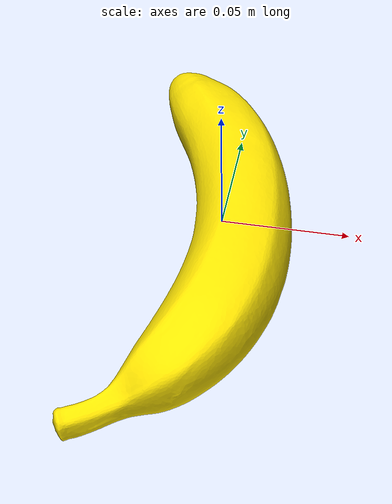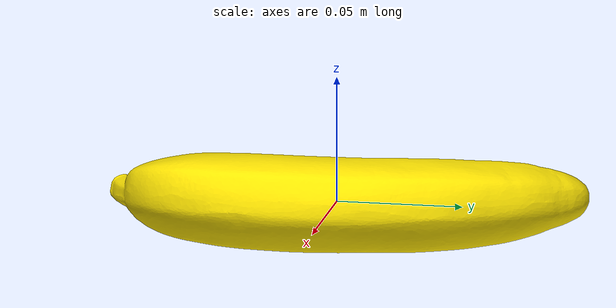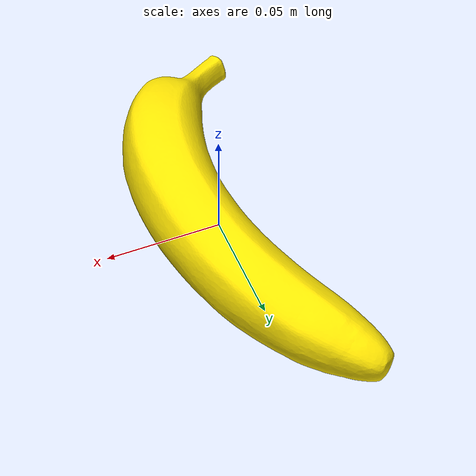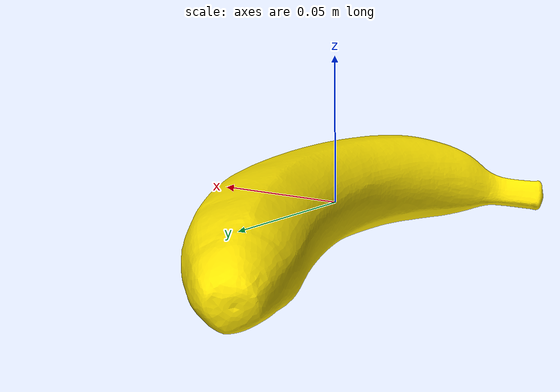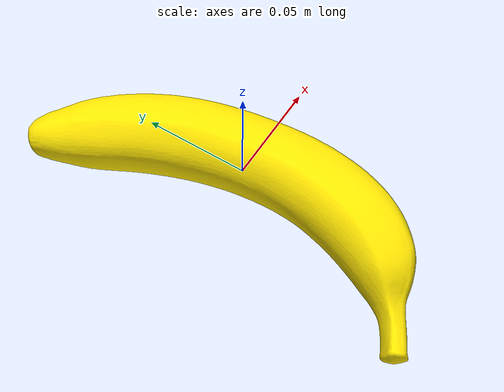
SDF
<?xml version="1.0"?>
<sdf version="1.7">
  <model name="banana">
    <link name="banana_link">
      <inertial>
        <mass>0.12</mass>
        <pose>0 0 0 0 0 0</pose>
        <inertia>
          <ixx>0.001</ixx>
          <ixy>0</ixy>
          <ixz>0</ixz>
          <iyy>0.001</iyy>
          <iyz>0</iyz>
          <izz>0.001</izz>
        </inertia>
      </inertial>

      <visual name="visual">
        <geometry>
          <mesh>
            <uri>textured.obj</uri>
            <scale>1 1 1</scale>
          </mesh>
        </geometry>
        <material>
          <diffuse>1.0 0.9 0.0 1.0</diffuse>
          <ambient>1.0 0.9 0.0 1.0</ambient>
          <specular>0.3 0.3 0.3 1.0</specular>
        </material>
      </visual>

      <collision name="collision">
        <geometry>
          <mesh>
            <uri>textured.obj</uri>
            <scale>1 1 1</scale>
          </mesh>
        </geometry>
        <drake:proximity_properties>
          <drake:compliant_hydroelastic/>
          <drake:hydroelastic_modulus>5e5</drake:hydroelastic_modulus>
          <drake:mesh_resolution_hint>0.005</drake:mesh_resolution_hint>
          <drake:hunt_crossley_dissipation>100.0</drake:hunt_crossley_dissipation>
          <drake:mu_dynamic>1.0</drake:mu_dynamic>
          <drake:mu_static>1.5</drake:mu_static>
        </drake:proximity_properties>
      </collision>
    </link>
  </model>
</sdf>
